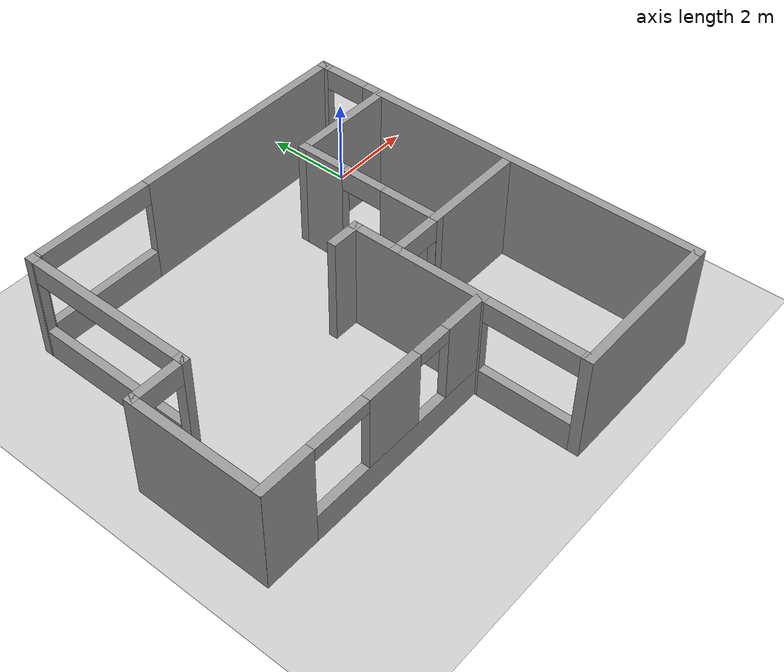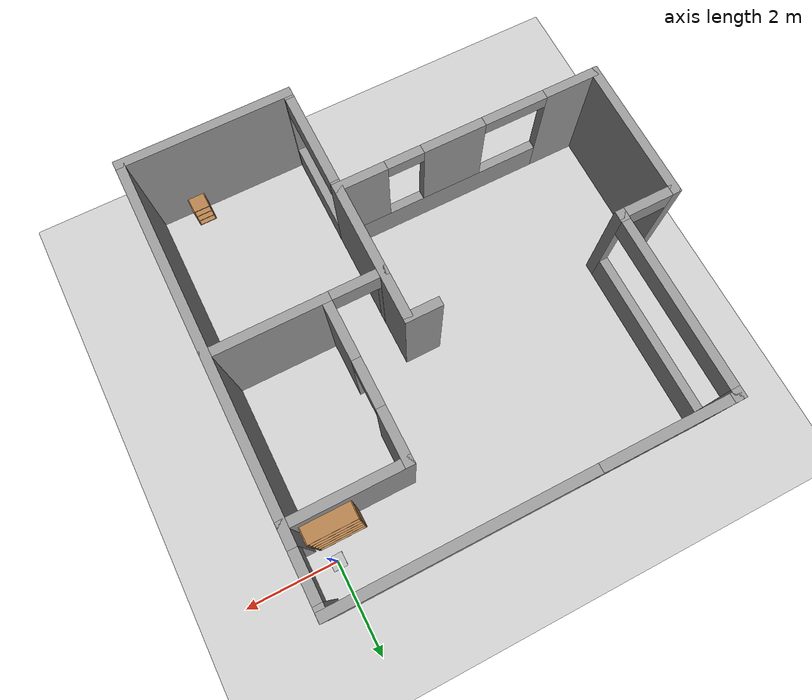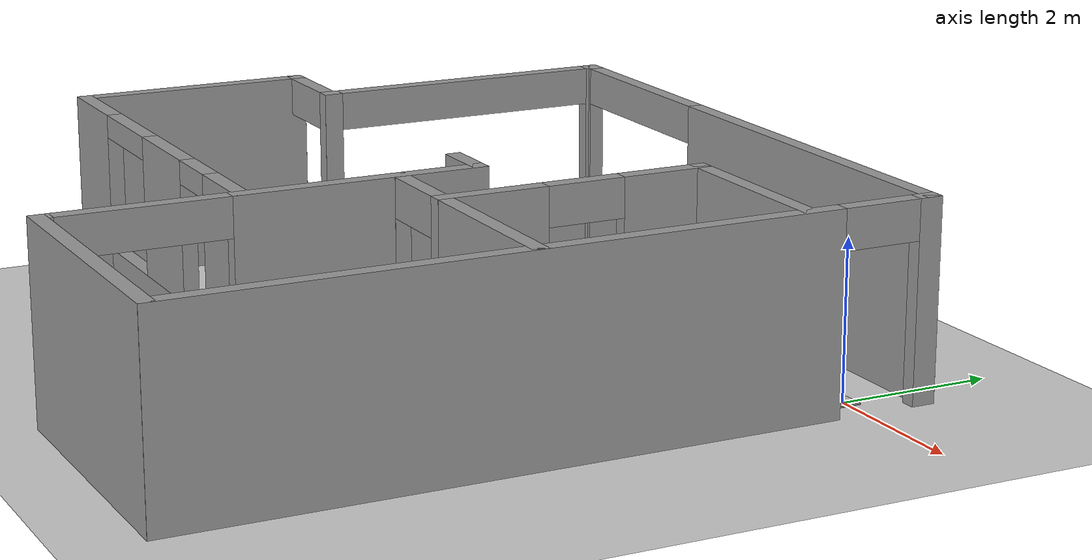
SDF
<sdf version="1.6">
 <world name="GrannyAnnie">
  <model name="ground_plane">
   <static>1</static>
   <link name="link">
    <collision name="collision">
     <geometry><plane><normal>0 0 1</normal><size>100 100</size></plane></geometry>
     <surface><friction><ode><mu>100</mu><mu2>50</mu2></ode></friction></surface>
    </collision>
    <visual name="visual">
     <cast_shadows>0</cast_shadows>
     <geometry><plane><normal>0 0 1</normal><size>100 100</size></plane></geometry>
     <material>
      <script><uri>file://media/materials/scripts/gazebo.material</uri><name>Gazebo/Grey</name></script>
     </material>
    </visual>
    <velocity_decay><linear>0</linear><angular>0</angular></velocity_decay>
   </link>
  </model>
  <model name="tag_0">
   <static>1</static>
   <link name="fronttag">
    <pose>0 0 0.01 0 0 0</pose>
    <collision name="collision"><geometry><box><size>0.3 0.3 0.01</size></box></geometry></collision>
    <visual name="visual">
     <geometry><box><size>0.3 0.3 0.01</size></box></geometry>
     <material>
      <script><uri>file://tags_material/scripts/tags.material</uri><name>Tag36_11_00000</name></script>
     </material>
    </visual>
   </link>
   <link name="backcover">
    <collision name="collision"><geometry><box><size>0.3 0.3 0.01</size></box></geometry></collision>
    <visual name="visual"><geometry><box><size>0.3 0.3 0.01</size></box></geometry></visual>
   </link>
   <static>0</static>
  </model>
  <model name="RoCKIn@Home">
   <link name="Wall_12">
    <collision name="Wall_12_Collision">
     <geometry><box><size>2.6 0.2 2.5</size></box></geometry>
     <pose>0 0 1.25 0 -0 0</pose>
    </collision>
    <visual name="Wall_12_Visual">
     <pose>0 0 1.25 0 -0 0</pose>
     <geometry><box><size>2.6 0.2 2.5</size></box></geometry>
     <material>
      <script><uri>file://media/materials/scripts/gazebo.material</uri><name>Gazebo/Grey</name></script>
     </material>
    </visual>
    <velocity_decay><linear>0</linear><angular>0</angular></velocity_decay>
    <pose>7.8 1.205 0 0 -0 1.5708</pose>
   </link>
   <link name="Wall_14">
    <pose>6.0996 2.4048 0 0 -0 3.14159</pose>
    <visual name="Wall_14_Visual_0">
     <pose>-1.20789 0 1.25 0 -0 0</pose>
     <geometry><box><size>1.18422 0.2 2.5</size></box></geometry>
     <material>
      <script><uri>file://media/materials/scripts/gazebo.material</uri><name>Gazebo/Grey</name></script>
     </material>
    </visual>
    <collision name="Wall_14_Collision_0">
     <geometry><box><size>1.18422 0.2 2.5</size></box></geometry>
     <pose>-1.20789 0 1.25 0 -0 0</pose>
    </collision>
    <visual name="Wall_14_Visual_1">
     <pose>1.09211 0 1.25 0 -0 0</pose>
     <geometry><box><size>1.41579 0.2 2.5</size></box></geometry>
     <material>
      <script><uri>file://media/materials/scripts/gazebo.material</uri><name>Gazebo/Grey</name></script>
     </material>
    </visual>
    <collision name="Wall_14_Collision_1">
     <geometry><box><size>1.41579 0.2 2.5</size></box></geometry>
     <pose>1.09211 0 1.25 0 -0 0</pose>
    </collision>
    <visual name="Wall_14_Visual_2">
     <pose>-0.115785 0 2.25 0 -0 0</pose>
     <geometry><box><size>1 0.2 0.5</size></box></geometry>
     <material>
      <script><uri>file://media/materials/scripts/gazebo.material</uri><name>Gazebo/Grey</name></script>
     </material>
    </visual>
    <collision name="Wall_14_Collision_2">
     <geometry><box><size>1 0.2 0.5</size></box></geometry>
     <pose>-0.115785 0 2.25 0 -0 0</pose>
    </collision>
    <velocity_decay><linear>0</linear><angular>0</angular></velocity_decay>
   </link>
   <link name="Wall_16">
    <collision name="Wall_16_Collision">
     <geometry><box><size>2.60492 0.2 2.5</size></box></geometry>
     <pose>0 0 1.25 0 -0 0</pose>
    </collision>
    <visual name="Wall_16_Visual">
     <pose>0 0 1.25 0 -0 0</pose>
     <geometry><box><size>2.60492 0.2 2.5</size></box></geometry>
     <material>
      <script><uri>file://media/materials/scripts/gazebo.material</uri><name>Gazebo/Grey</name></script>
     </material>
    </visual>
    <velocity_decay><linear>0</linear><angular>0</angular></velocity_decay>
    <pose>4.39903 1.20277 0 0 -0 1.5708</pose>
   </link>
   <link name="Wall_18">
    <collision name="Wall_18_Collision">
     <geometry><box><size>3.8 0.2 2.5</size></box></geometry>
     <pose>0 0 1.25 0 -0 0</pose>
    </collision>
    <visual name="Wall_18_Visual">
     <pose>0 0 1.25 0 -0 0</pose>
     <geometry><box><size>3.8 0.2 2.5</size></box></geometry>
     <material>
      <script><uri>file://media/materials/scripts/gazebo.material</uri><name>Gazebo/Grey</name></script>
     </material>
    </visual>
    <velocity_decay><linear>0</linear><angular>0</angular></velocity_decay>
    <pose>0.024876 1.80003 0 0 -0 1.5708</pose>
   </link>
   <link name="Wall_2">
    <pose>4.7266 0 0 0 -0 0</pose>
    <visual name="Wall_2_Visual_0">
     <pose>-0.649274 0 1.25 0 -0 0</pose>
     <geometry><box><size>8.30145 0.2 2.5</size></box></geometry>
     <material>
      <script><uri>file://media/materials/scripts/gazebo.material</uri><name>Gazebo/Grey</name></script>
     </material>
    </visual>
    <collision name="Wall_2_Collision_0">
     <geometry><box><size>8.30145 0.2 2.5</size></box></geometry>
     <pose>-0.649274 0 1.25 0 -0 0</pose>
    </collision>
    <visual name="Wall_2_Visual_1">
     <pose>4.65073 0 1.25 0 -0 0</pose>
     <geometry><box><size>0.298547 0.2 2.5</size></box></geometry>
     <material>
      <script><uri>file://media/materials/scripts/gazebo.material</uri><name>Gazebo/Grey</name></script>
     </material>
    </visual>
    <collision name="Wall_2_Collision_1">
     <geometry><box><size>0.298547 0.2 2.5</size></box></geometry>
     <pose>4.65073 0 1.25 0 -0 0</pose>
    </collision>
    <visual name="Wall_2_Visual_2">
     <pose>4.00145 0 2.25 0 -0 0</pose>
     <geometry><box><size>1 0.2 0.5</size></box></geometry>
     <material>
      <script><uri>file://media/materials/scripts/gazebo.material</uri><name>Gazebo/Grey</name></script>
     </material>
    </visual>
    <collision name="Wall_2_Collision_2">
     <geometry><box><size>1 0.2 0.5</size></box></geometry>
     <pose>4.00145 0 2.25 0 -0 0</pose>
    </collision>
    <velocity_decay><linear>0</linear><angular>0</angular></velocity_decay>
   </link>
   <link name="Wall_20">
    <pose>2.72456 3.60059 0 0 -0 0</pose>
    <visual name="Wall_20_Visual_0">
     <pose>-2.67396 0 1.25 0 -0 0</pose>
     <geometry><box><size>0.251208 0.2 2.5</size></box></geometry>
     <material>
      <script><uri>file://media/materials/scripts/gazebo.material</uri><name>Gazebo/Grey</name></script>
     </material>
    </visual>
    <collision name="Wall_20_Collision_0">
     <geometry><box><size>0.251208 0.2 2.5</size></box></geometry>
     <pose>-2.67396 0 1.25 0 -0 0</pose>
    </collision>
    <visual name="Wall_20_Visual_1">
     <pose>1.1766 0 1.25 0 -0 0</pose>
     <geometry><box><size>3.24591 0.2 2.5</size></box></geometry>
     <material>
      <script><uri>file://media/materials/scripts/gazebo.material</uri><name>Gazebo/Grey</name></script>
     </material>
    </visual>
    <collision name="Wall_20_Collision_1">
     <geometry><box><size>3.24591 0.2 2.5</size></box></geometry>
     <pose>1.1766 0 1.25 0 -0 0</pose>
    </collision>
    <visual name="Wall_20_Visual_2">
     <pose>-1.49735 0 2.25 0 -0 0</pose>
     <geometry><box><size>2.102 0.2 0.5</size></box></geometry>
     <material>
      <script><uri>file://media/materials/scripts/gazebo.material</uri><name>Gazebo/Grey</name></script>
     </material>
    </visual>
    <collision name="Wall_20_Collision_2">
     <geometry><box><size>2.102 0.2 0.5</size></box></geometry>
     <pose>-1.49735 0 2.25 0 -0 0</pose>
    </collision>
    <visual name="Wall_20_Visual_3">
     <pose>-1.49735 0 0.35 0 -0 0</pose>
     <geometry><box><size>2.102 0.2 0.7</size></box></geometry>
     <material>
      <script><uri>file://media/materials/scripts/gazebo.material</uri><name>Gazebo/Grey</name></script>
     </material>
    </visual>
    <collision name="Wall_20_Collision_3">
     <geometry><box><size>2.102 0.2 0.3</size></box></geometry>
     <pose>-1.49735 0 0.35 0 -0 0</pose>
    </collision>
    <velocity_decay><linear>0</linear><angular>0</angular></velocity_decay>
   </link>
   <link name="Wall_22">
    <pose>4.39856 3.00206 0 0 -0 1.5708</pose>
    <visual name="Wall_22_Visual_0">
     <pose>-0.601085 0 1.25 0 -0 0</pose>
     <geometry><box><size>0.194709 0.2 2.5</size></box></geometry>
     <material>
      <script><uri>file://media/materials/scripts/gazebo.material</uri><name>Gazebo/Grey</name></script>
     </material>
    </visual>
    <collision name="Wall_22_Collision_0">
     <geometry><box><size>0.194709 0.2 2.5</size></box></geometry>
     <pose>-0.601085 0 1.25 0 -0 0</pose>
    </collision>
    <visual name="Wall_22_Visual_1">
     <pose>0.597355 0 1.25 0 -0 0</pose>
     <geometry><box><size>0.202171 0.2 2.5</size></box></geometry>
     <material>
      <script><uri>file://media/materials/scripts/gazebo.material</uri><name>Gazebo/Grey</name></script>
     </material>
    </visual>
    <collision name="Wall_22_Collision_1">
     <geometry><box><size>0.202171 0.2 2.5</size></box></geometry>
     <pose>0.597355 0 1.25 0 -0 0</pose>
    </collision>
    <visual name="Wall_22_Visual_2">
     <pose>-0.003731 0 2.25 0 -0 0</pose>
     <geometry><box><size>1 0.2 0.5</size></box></geometry>
     <material>
      <script><uri>file://media/materials/scripts/gazebo.material</uri><name>Gazebo/Grey</name></script>
     </material>
    </visual>
    <collision name="Wall_22_Collision_2">
     <geometry><box><size>1 0.2 0.5</size></box></geometry>
     <pose>-0.003731 0 2.25 0 -0 0</pose>
    </collision>
    <velocity_decay><linear>0</linear><angular>0</angular></velocity_decay>
   </link>
   <link name="Wall_24">
    <pose>7.42703 8.20242 0 0 -0 3.14159</pose>
    <visual name="Wall_24_Visual_0">
     <pose>-1.97924 0 1.25 0 -0 0</pose>
     <geometry><box><size>0.241529 0.2 2.5</size></box></geometry>
     <material>
      <script><uri>file://media/materials/scripts/gazebo.material</uri><name>Gazebo/Grey</name></script>
     </material>
    </visual>
    <collision name="Wall_24_Collision_0">
     <geometry><box><size>0.241529 0.2 2.5</size></box></geometry>
     <pose>-1.97924 0 1.25 0 -0 0</pose>
    </collision>
    <visual name="Wall_24_Visual_1">
     <pose>1.97395 0 1.25 0 -0 0</pose>
     <geometry><box><size>0.252091 0.2 2.5</size></box></geometry>
     <material>
      <script><uri>file://media/materials/scripts/gazebo.material</uri><name>Gazebo/Grey</name></script>
     </material>
    </visual>
    <collision name="Wall_24_Collision_1">
     <geometry><box><size>0.252091 0.2 2.5</size></box></geometry>
     <pose>1.97395 0 1.25 0 -0 0</pose>
    </collision>
    <visual name="Wall_24_Visual_2">
     <pose>-0.005281 0 2.25 0 -0 0</pose>
     <geometry><box><size>3.70638 0.2 0.5</size></box></geometry>
     <material>
      <script><uri>file://media/materials/scripts/gazebo.material</uri><name>Gazebo/Grey</name></script>
     </material>
    </visual>
    <collision name="Wall_24_Collision_2">
     <geometry><box><size>3.70638 0.2 0.5</size></box></geometry>
     <pose>-0.005281 0 2.25 0 -0 0</pose>
    </collision>
    <visual name="Wall_24_Visual_3">
     <pose>-0.005281 0 0.35 0 -0 0</pose>
     <geometry><box><size>3.70638 0.2 0.7</size></box></geometry>
     <material>
      <script><uri>file://media/materials/scripts/gazebo.material</uri><name>Gazebo/Grey</name></script>
     </material>
    </visual>
    <collision name="Wall_24_Collision_3">
     <geometry><box><size>3.70638 0.2 0.7</size></box></geometry>
     <pose>-0.005281 0 0.35 0 -0 0</pose>
    </collision>
    <velocity_decay><linear>0</linear><angular>0</angular></velocity_decay>
   </link>
   <link name="Wall_28">
    <collision name="Wall_28_Collision">
     <geometry><box><size>3.2 0.2 2.5</size></box></geometry>
     <pose>0 0 1.25 0 -0 0</pose>
    </collision>
    <visual name="Wall_28_Visual">
     <pose>0 0 1.25 0 -0 0</pose>
     <geometry><box><size>3.2 0.2 2.5</size></box></geometry>
     <material>
      <script><uri>file://media/materials/scripts/gazebo.material</uri><name>Gazebo/Grey</name></script>
     </material>
    </visual>
    <velocity_decay><linear>0</linear><angular>0</angular></velocity_decay>
    <pose>3.92571 9.40229 0 0 -0 3.14159</pose>
   </link>
   <link name="Wall_30">
    <pose>2.42541 6.50159 0 0 0 -1.5708</pose>
    <visual name="Wall_30_Visual_0">
     <pose>-2.363 0 1.25 0 -0 0</pose>
     <geometry><box><size>1.27269 0.2 2.5</size></box></geometry>
     <material>
      <script><uri>file://media/materials/scripts/gazebo.material</uri><name>Gazebo/Grey</name></script>
     </material>
    </visual>
    <collision name="Wall_30_Collision_0">
     <geometry><box><size>1.27269 0.2 2.5</size></box></geometry>
     <pose>-2.363 0 1.25 0 -0 0</pose>
    </collision>
    <visual name="Wall_30_Visual_1">
     <pose>0.636346 0 0.35 0 -0 0</pose>
     <geometry><box><size>4.726 0.2 0.7</size></box></geometry>
     <material>
      <script><uri>file://media/materials/scripts/gazebo.material</uri><name>Gazebo/Grey</name></script>
     </material>
    </visual>
    <collision name="Wall_30_Collision_1">
     <geometry><box><size>4.726 0.2 0.7</size></box></geometry>
     <pose>0.636346 0 0.35 0 -0 0</pose>
    </collision>
    <visual name="Wall_30_Visual_2">
     <pose>0.36359 0 1.6 0 -0 0</pose>
     <geometry><box><size>1.38049 0.2 1.8</size></box></geometry>
     <material>
      <script><uri>file://media/materials/scripts/gazebo.material</uri><name>Gazebo/Grey</name></script>
     </material>
    </visual>
    <collision name="Wall_30_Collision_2">
     <geometry><box><size>1.38049 0.2 1.8</size></box></geometry>
     <pose>0.36359 0 1.6 0 -0 0</pose>
    </collision>
    <visual name="Wall_30_Visual_3">
     <pose>2.42659 0 1.6 0 -0 0</pose>
     <geometry><box><size>1.14551 0.2 1.8</size></box></geometry>
     <material>
      <script><uri>file://media/materials/scripts/gazebo.material</uri><name>Gazebo/Grey</name></script>
     </material>
    </visual>
    <collision name="Wall_30_Collision_3">
     <geometry><box><size>1.14551 0.2 1.8</size></box></geometry>
     <pose>2.42659 0 1.6 0 -0 0</pose>
    </collision>
    <visual name="Wall_30_Visual_4">
     <pose>-1.02665 0 2.35 0 -0 0</pose>
     <geometry><box><size>1.4 0.2 0.3</size></box></geometry>
     <material>
      <script><uri>file://media/materials/scripts/gazebo.material</uri><name>Gazebo/Grey</name></script>
     </material>
    </visual>
    <collision name="Wall_30_Collision_4">
     <geometry><box><size>1.4 0.2 0.3</size></box></geometry>
     <pose>-1.02665 0 2.35 0 -0 0</pose>
    </collision>
    <visual name="Wall_30_Visual_5">
     <pose>1.45383 0 2.35 0 -0 0</pose>
     <geometry><box><size>0.8 0.2 0.3</size></box></geometry>
     <material>
      <script><uri>file://media/materials/scripts/gazebo.material</uri><name>Gazebo/Grey</name></script>
     </material>
    </visual>
    <collision name="Wall_30_Collision_5">
     <geometry><box><size>0.8 0.2 0.3</size></box></geometry>
     <pose>1.45383 0 2.35 0 -0 0</pose>
    </collision>
    <velocity_decay><linear>0</linear><angular>0</angular></velocity_decay>
   </link>
   <link name="Wall_32">
    <pose>5.42654 8.80216 0 0 0 -1.5708</pose>
    <visual name="Wall_32_Visual_0">
     <pose>-0.599775 0 1.25 0 -0 0</pose>
     <geometry><box><size>0.199231 0.2 2.5</size></box></geometry>
     <material>
      <script><uri>file://media/materials/scripts/gazebo.material</uri><name>Gazebo/Grey</name></script>
     </material>
    </visual>
    <collision name="Wall_32_Collision_0">
     <geometry><box><size>0.199231 0.2 2.5</size></box></geometry>
     <pose>-0.599775 0 1.25 0 -0 0</pose>
    </collision>
    <visual name="Wall_32_Visual_1">
     <pose>0.599615 0 1.25 0 -0 0</pose>
     <geometry><box><size>0.199549 0.2 2.5</size></box></geometry>
     <material>
      <script><uri>file://media/materials/scripts/gazebo.material</uri><name>Gazebo/Grey</name></script>
     </material>
    </visual>
    <collision name="Wall_32_Collision_1">
     <geometry><box><size>0.199549 0.2 2.5</size></box></geometry>
     <pose>0.599615 0 1.25 0 -0 0</pose>
    </collision>
    <visual name="Wall_32_Visual_2">
     <pose>-0.000159 0 2.25 0 -0 0</pose>
     <geometry><box><size>1 0.2 0.5</size></box></geometry>
     <material>
      <script><uri>file://media/materials/scripts/gazebo.material</uri><name>Gazebo/Grey</name></script>
     </material>
    </visual>
    <collision name="Wall_32_Collision_2">
     <geometry><box><size>1 0.2 0.5</size></box></geometry>
     <pose>-0.000159 0 2.25 0 -0 0</pose>
    </collision>
    <velocity_decay><linear>0</linear><angular>0</angular></velocity_decay>
   </link>
   <link name="Wall_35">
    <collision name="Wall_35_Collision">
     <geometry><box><size>0.8 0.2 2.5</size></box></geometry>
     <pose>0 0 1.25 0 -0 0</pose>
    </collision>
    <visual name="Wall_35_Visual">
     <pose>0 0 1.25 0 -0 0</pose>
     <geometry><box><size>0.8 0.2 2.5</size></box></geometry>
     <material>
      <script><uri>file://media/materials/scripts/gazebo.material</uri><name>Gazebo/Grey</name></script>
     </material>
    </visual>
    <velocity_decay><linear>0</linear><angular>0</angular></velocity_decay>
    <pose>5.42451 3.90082 0 0 -0 1.5708</pose>
   </link>
   <link name="Wall_8">
    <pose>9.42875 4.1026 0 0 -0 1.5708</pose>
    <visual name="Wall_8_Visual_0">
     <pose>-1.48935 0 1.25 0 -0 0</pose>
     <geometry><box><size>5.42201 0.2 2.5</size></box></geometry>
     <material>
      <script><uri>file://media/materials/scripts/gazebo.material</uri><name>Gazebo/Grey</name></script>
     </material>
    </visual>
    <collision name="Wall_8_Collision_0">
     <geometry><box><size>5.42201 0.2 2.5</size></box></geometry>
     <pose>-1.48935 0 1.25 0 -0 0</pose>
    </collision>
    <visual name="Wall_8_Visual_1">
     <pose>4.07465 0 1.25 0 -0 0</pose>
     <geometry><box><size>0.251416 0.2 2.5</size></box></geometry>
     <material>
      <script><uri>file://media/materials/scripts/gazebo.material</uri><name>Gazebo/Grey</name></script>
     </material>
    </visual>
    <collision name="Wall_8_Collision_1">
     <geometry><box><size>0.251416 0.2 2.5</size></box></geometry>
     <pose>4.07465 0 1.25 0 -0 0</pose>
    </collision>
    <visual name="Wall_8_Visual_2">
     <pose>2.5853 0 2.25 0 -0 0</pose>
     <geometry><box><size>2.72728 0.2 0.5</size></box></geometry>
     <material>
      <script><uri>file://media/materials/scripts/gazebo.material</uri><name>Gazebo/Grey</name></script>
     </material>
    </visual>
    <collision name="Wall_8_Collision_2">
     <geometry><box><size>2.72728 0.2 0.5</size></box></geometry>
     <pose>2.5853 0 2.25 0 -0 0</pose>
    </collision>
    <visual name="Wall_8_Visual_3">
     <pose>2.5853 0 0.35 0 -0 0</pose>
     <geometry><box><size>2.72728 0.2 0.7</size></box></geometry>
     <material>
      <script><uri>file://media/materials/scripts/gazebo.material</uri><name>Gazebo/Grey</name></script>
     </material>
    </visual>
    <collision name="Wall_8_Collision_3">
     <geometry><box><size>2.72728 0.2 0.7</size></box></geometry>
     <pose>2.5853 0 0.35 0 -0 0</pose>
    </collision>
    <velocity_decay><linear>0</linear><angular>0</angular></velocity_decay>
   </link>
   <static>1</static>
   <pose>0.4 -8.6 0 0 -0 1.57</pose>
  </model>
  <model name="estanteria_1">
   <link name="estanteria_link">
    <inertial>
     <pose>0 0 1.046 0 -0 0</pose>
     <mass>10</mass>
     <inertia><ixx>3.12544</ixx><ixy>0</ixy><ixz>0</ixz><iyy>4.16584</iyy><iyz>0</iyz><izz>1.1204</izz></inertia>
    </inertial>
    <collision name="estanteria_link_collision">
     <pose>0 0 0.01 0 -0 0</pose>
     <geometry><box><size>1 0.35 0.02</size></box></geometry>
     <surface><friction><ode><mu>1</mu><mu2>1</mu2></ode></friction></surface>
    </collision>
    <collision name="estanteria_link_collision_basal_1_link">
     <pose>0 0 0.41 0 -0 0</pose>
     <geometry><box><size>1 0.35 0.02</size></box></geometry>
     <surface><friction><ode><mu>1</mu><mu2>1</mu2></ode></friction></surface>
     <surface><friction><ode><mu>1</mu><mu2>1</mu2></ode></friction></surface>
    </collision>
    <collision name="estanteria_link_collision_basal_2_link">
     <pose>0 0 0.83 0 -0 0</pose>
     <geometry><box><size>1 0.35 0.02</size></box></geometry>
     <surface><friction><ode><mu>1</mu><mu2>1</mu2></ode></friction></surface>
     <surface><friction><ode><mu>1</mu><mu2>1</mu2></ode></friction></surface>
    </collision>
    <collision name="estanteria_link_collision_basal_3_link">
     <pose>0 0 1.25 0 -0 0</pose>
     <geometry><box><size>1 0.35 0.02</size></box></geometry>
     <surface><friction><ode><mu>1</mu><mu2>1</mu2></ode></friction></surface>
     <surface><friction><ode><mu>1</mu><mu2>1</mu2></ode></friction></surface>
    </collision>
    <collision name="estanteria_link_collision_basal_4_link">
     <pose>0 0 1.67 0 -0 0</pose>
     <geometry><box><size>1 0.35 0.02</size></box></geometry>
     <surface><friction><ode><mu>1</mu><mu2>1</mu2></ode></friction></surface>
     <surface><friction><ode><mu>1</mu><mu2>1</mu2></ode></friction></surface>
    </collision>
    <collision name="estanteria_link_collision_basal_5_link">
     <pose>0 0 2.09 0 -0 0</pose>
     <geometry><box><size>1 0.35 0.02</size></box></geometry>
     <surface><friction><ode><mu>1</mu><mu2>1</mu2></ode></friction></surface>
     <surface><friction><ode><mu>1</mu><mu2>1</mu2></ode></friction></surface>
    </collision>
    <collision name="estanteria_link_collision_lateral_1_link">
     <pose>0.51 0 1.05 0 -0 0</pose>
     <geometry><box><size>0.02 0.35 2.1</size></box></geometry>
     <surface><friction><ode><mu>1</mu><mu2>1</mu2></ode></friction></surface>
     <surface><friction><ode><mu>1</mu><mu2>1</mu2></ode></friction></surface>
    </collision>
    <collision name="estanteria_link_collision_lateral_2_link">
     <pose>-0.51 0 1.05 0 -0 0</pose>
     <geometry><box><size>0.02 0.35 2.1</size></box></geometry>
     <surface><friction><ode><mu>1</mu><mu2>1</mu2></ode></friction></surface>
     <surface><friction><ode><mu>1</mu><mu2>1</mu2></ode></friction></surface>
    </collision>
    <visual name="estanteria_link_visual">
     <pose>0 0 0.01 0 -0 0</pose>
     <geometry><box><size>1 0.35 0.02</size></box></geometry>
     <material><script><name>Gazebo/Wood</name><uri>__default__</uri></script></material>
    </visual>
    <visual name="estanteria_link_visual_basal_1_link">
     <pose>0 0 0.41 0 -0 0</pose>
     <geometry><box><size>1 0.35 0.02</size></box></geometry>
     <material><script><name>Gazebo/Wood</name><uri>__default__</uri></script></material>
    </visual>
    <visual name="estanteria_link_visual_basal_2_link">
     <pose>0 0 0.83 0 -0 0</pose>
     <geometry><box><size>1 0.35 0.02</size></box></geometry>
     <material><script><name>Gazebo/Wood</name><uri>__default__</uri></script></material>
    </visual>
    <visual name="estanteria_link_visual_basal_3_link">
     <pose>0 0 1.25 0 -0 0</pose>
     <geometry><box><size>1 0.35 0.02</size></box></geometry>
     <material><script><name>Gazebo/Wood</name><uri>__default__</uri></script></material>
    </visual>
    <visual name="estanteria_link_visual_basal_4_link">
     <pose>0 0 1.67 0 -0 0</pose>
     <geometry><box><size>1 0.35 0.02</size></box></geometry>
     <material><script><name>Gazebo/Wood</name><uri>__default__</uri></script></material>
    </visual>
    <visual name="estanteria_link_visual_basal_5_link">
     <pose>0 0 2.09 0 -0 0</pose>
     <geometry><box><size>1 0.35 0.02</size></box></geometry>
     <material><script><name>Gazebo/Wood</name><uri>__default__</uri></script></material>
    </visual>
    <visual name="estanteria_link_visual_lateral_1_link">
     <pose>0.51 0 1.05 0 -0 0</pose>
     <geometry><box><size>0.02 0.35 2.1</size></box></geometry>
     <material><script><name>Gazebo/Wood</name><uri>__default__</uri></script></material>
    </visual>
    <visual name="estanteria_link_visual_lateral_2_link">
     <pose>-0.51 0 1.05 0 -0 0</pose>
     <geometry><box><size>0.02 0.35 2.1</size></box></geometry>
     <material><script><name>Gazebo/Wood</name><uri>__default__</uri></script></material>
    </visual>
    <velocity_decay><linear>0</linear><angular>0</angular></velocity_decay>
    <velocity_decay><linear>0</linear><angular>0</angular></velocity_decay>
    <velocity_decay><linear>0</linear><angular>0</angular></velocity_decay>
    <velocity_decay><linear>0</linear><angular>0</angular></velocity_decay>
    <velocity_decay><linear>0</linear><angular>0</angular></velocity_decay>
    <velocity_decay><linear>0</linear><angular>0</angular></velocity_decay>
    <velocity_decay><linear>0</linear><angular>0</angular></velocity_decay>
    <velocity_decay><linear>0</linear><angular>0</angular></velocity_decay>
    <self_collide>1</self_collide>
   </link>
   <pose>-0.3 -0.52 0 0 -0 0</pose>
   <static>0</static>
  </model>
  <model name="mesita_2">
   <link name="mesita_link">
    <inertial>
     <pose>0 0 0.2975 0 -0 0</pose>
     <mass>8</mass>
     <inertia><ixx>0.24835</ixx><ixy>0</ixy><ixz>0</ixz><iyy>0.38525</iyy><iyz>0</iyz><izz>0.1969</izz></inertia>
    </inertial>
    <collision name="mesita_link_collision">
     <pose>0 0 0.01 0 -0 0</pose>
     <geometry><box><size>0.35 0.35 0.02</size></box></geometry>
     <surface><friction><ode><mu>1</mu><mu2>1</mu2></ode></friction></surface>
    </collision>
    <collision name="mesita_link_collision_basal_1_link">
     <pose>0 0 0.19 0 -0 0</pose>
     <geometry><box><size>0.35 0.35 0.02</size></box></geometry>
     <surface><friction><ode><mu>1</mu><mu2>1</mu2></ode></friction></surface>
     <surface><friction><ode><mu>1</mu><mu2>1</mu2></ode></friction></surface>
    </collision>
    <collision name="mesita_link_collision_basal_2_link">
     <pose>0 0 0.39 0 -0 0</pose>
     <geometry><box><size>0.35 0.35 0.02</size></box></geometry>
     <surface><friction><ode><mu>1</mu><mu2>1</mu2></ode></friction></surface>
     <surface><friction><ode><mu>1</mu><mu2>1</mu2></ode></friction></surface>
    </collision>
    <collision name="mesita_link_collision_basal_3_link">
     <pose>0 0 0.59 0 -0 0</pose>
     <geometry><box><size>0.35 0.35 0.02</size></box></geometry>
     <surface><friction><ode><mu>1</mu><mu2>1</mu2></ode></friction></surface>
     <surface><friction><ode><mu>1</mu><mu2>1</mu2></ode></friction></surface>
    </collision>
    <collision name="mesita_link_collision_lateral_1_link">
     <pose>0.185 0 0.3 0 -0 0</pose>
     <geometry><box><size>0.02 0.35 0.6</size></box></geometry>
     <surface><friction><ode><mu>1</mu><mu2>1</mu2></ode></friction></surface>
     <surface><friction><ode><mu>1</mu><mu2>1</mu2></ode></friction></surface>
    </collision>
    <collision name="mesita_link_collision_lateral_2_link">
     <pose>-0.185 0 0.3 0 -0 0</pose>
     <geometry><box><size>0.02 0.35 0.6</size></box></geometry>
     <surface><friction><ode><mu>1</mu><mu2>1</mu2></ode></friction></surface>
     <surface><friction><ode><mu>1</mu><mu2>1</mu2></ode></friction></surface>
    </collision>
    <visual name="mesita_link_visual">
     <pose>0 0 0.01 0 -0 0</pose>
     <geometry><box><size>0.35 0.35 0.02</size></box></geometry>
     <material><script><name>Gazebo/Wood</name><uri>__default__</uri></script></material>
    </visual>
    <visual name="mesita_link_visual_basal_1_link">
     <pose>0 0 0.19 0 -0 0</pose>
     <geometry><box><size>0.35 0.35 0.02</size></box></geometry>
     <material><script><name>Gazebo/Wood</name><uri>__default__</uri></script></material>
    </visual>
    <visual name="mesita_link_visual_basal_2_link">
     <pose>0 0 0.39 0 -0 0</pose>
     <geometry><box><size>0.35 0.35 0.02</size></box></geometry>
     <material><script><name>Gazebo/Wood</name><uri>__default__</uri></script></material>
    </visual>
    <visual name="mesita_link_visual_basal_3_link">
     <pose>0 0 0.59 0 -0 0</pose>
     <geometry><box><size>0.35 0.35 0.02</size></box></geometry>
     <material><script><name>Gazebo/Wood</name><uri>__default__</uri></script></material>
    </visual>
    <visual name="mesita_link_visual_lateral_1_link">
     <pose>0.185 0 0.3 0 -0 0</pose>
     <geometry><box><size>0.02 0.35 0.6</size></box></geometry>
     <material><script><name>Gazebo/Wood</name><uri>__default__</uri></script></material>
    </visual>
    <visual name="mesita_link_visual_lateral_2_link">
     <pose>-0.185 0 0.3 0 -0 0</pose>
     <geometry><box><size>0.02 0.35 0.6</size></box></geometry>
     <material><script><name>Gazebo/Wood</name><uri>__default__</uri></script></material>
    </visual>
    <velocity_decay><linear>0</linear><angular>0</angular></velocity_decay>
    <velocity_decay><linear>0</linear><angular>0</angular></velocity_decay>
    <velocity_decay><linear>0</linear><angular>0</angular></velocity_decay>
    <velocity_decay><linear>0</linear><angular>0</angular></velocity_decay>
    <velocity_decay><linear>0</linear><angular>0</angular></velocity_decay>
    <velocity_decay><linear>0</linear><angular>0</angular></velocity_decay>
    <self_collide>1</self_collide>
   </link>
   <pose>-0.6 -8.28 0 0 -0 0</pose>
   <static>0</static>
  </model>
 </world>
</sdf>
